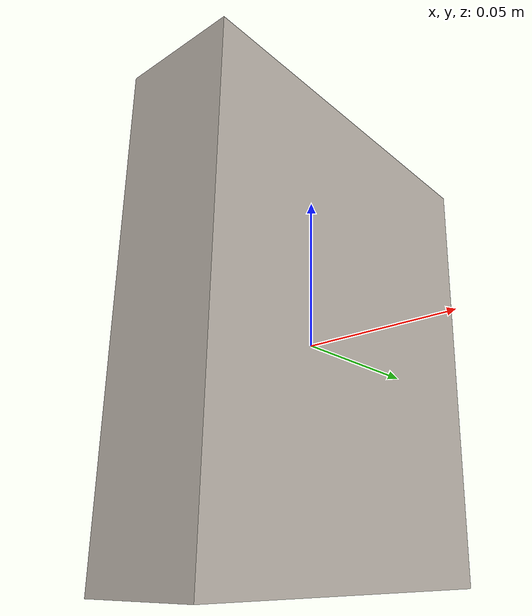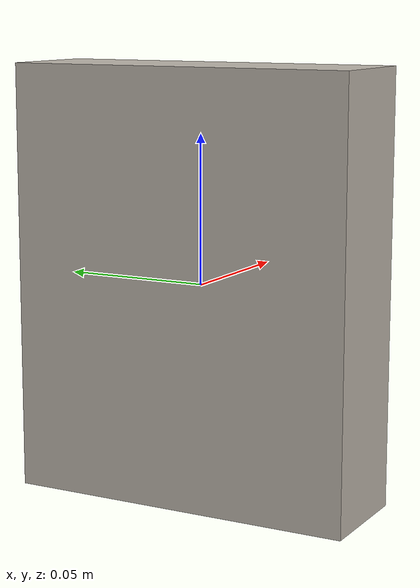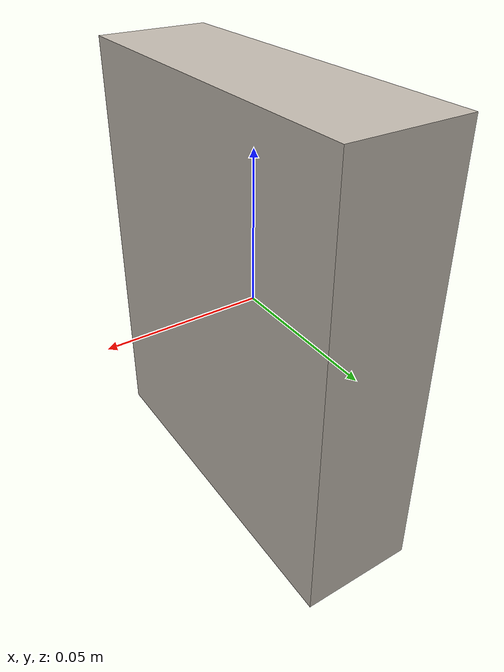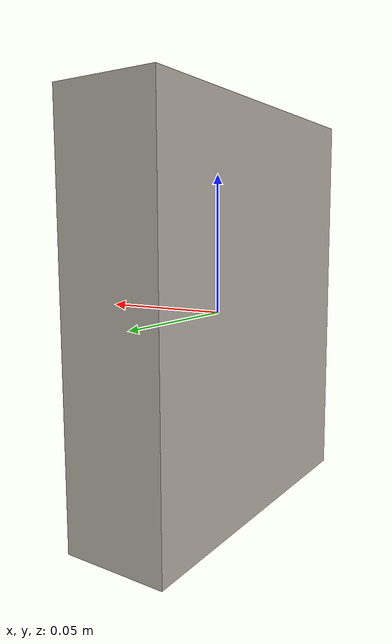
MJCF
<mujoco model="cereal_33">
  <asset>
    <mesh file="visual/model_normalized_0.obj" name="model_normalized_0_vis" scale="0.14499999999999996 0.14499999999999996 0.14499999999999996" refquat="1.0 0.0 0.0 0.0" />
    <texture type="2d" name="image0" file="visual/image0.png" />
    <material name="test_checker" texture="image0" specular="0.5" shininess="0.25" />
  </asset>
  <default>
    <default class="region">
      <geom group="1" conaffinity="0" contype="0" rgba="0 1 0 0" />
    </default>
  </default>
  <worldbody>
    <body>
      <body name="object">
        <geom solimp="0.998 0.998 0.001" solref="0.001 1" density="100" friction="0.95 0.3 0.1" type="mesh" mesh="model_normalized_0_vis" conaffinity="0" contype="0" group="1" material="test_checker" />
        <geom solimp="0.998 0.998 0.001" solref="0.001 1" density="100" friction="0.95 0.3 0.1" type="box" group="0" rgba="0.8 0.8 0.8 0.0" size="0.018832138899999996 0.059572377099999983 0.072500001449999962" pos="0 0 1.4499999950734477e-09" />
        <geom class="region" name="reg_bbox" type="box" pos="0 0 1.4499999950734477e-09" size="0.018832138899999996 0.059572377099999983 0.072500001449999962" />
      </body>
    <site name="bottom_site" pos="0 0 -0.072500001449999962" size="0.005" rgba="0 0 0 0" /><site name="top_site" pos="0 0 0.072500001449999962" size="0.005" rgba="0 0 0 0" /><site name="horizontal_radius_site" pos="0.062478136727126363 0 0" size="0.005" rgba="0 0 0 0" /></body>
  </worldbody>
</mujoco>
